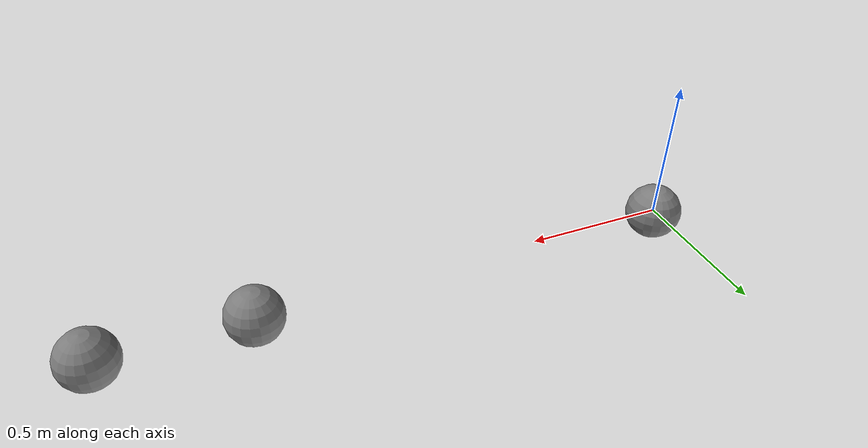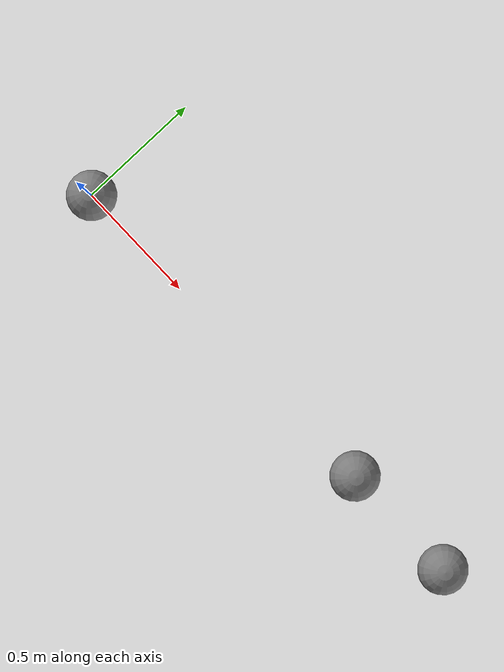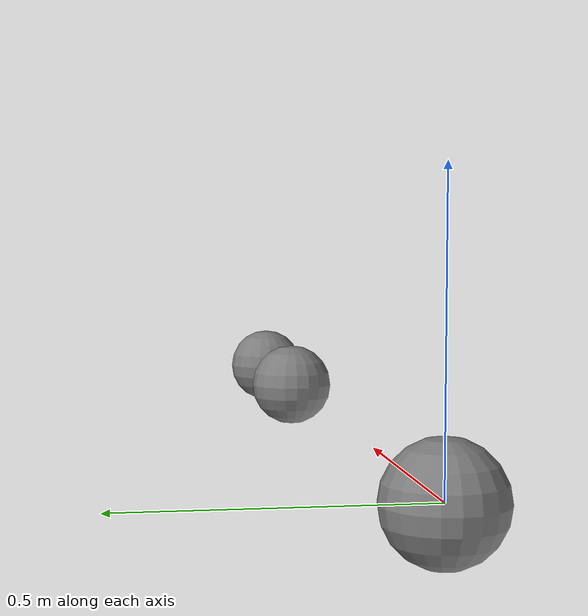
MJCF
<mujoco model="t25">
            <worldbody>
                <body name="b1" pos="0 0 0">
                    <geom name="g1_parent" type="sphere" size="0.1" pos="0 0 0"/>
                    <body name="b1_child" pos="1.5 0 0">
                        <geom name="g1_child" type="sphere" size="0.1" pos="0 0 0"/>
                    </body>
                </body>
                <body name="b2" pos="2 0 0">
                    <geom name="g2" type="sphere" size="0.1" pos="0 0 0"/>
                </body>
            </worldbody>
            <sensor>
                <distance name="d" body1="b1" body2="b2" cutoff="10"/>
            </sensor>
        </mujoco>
